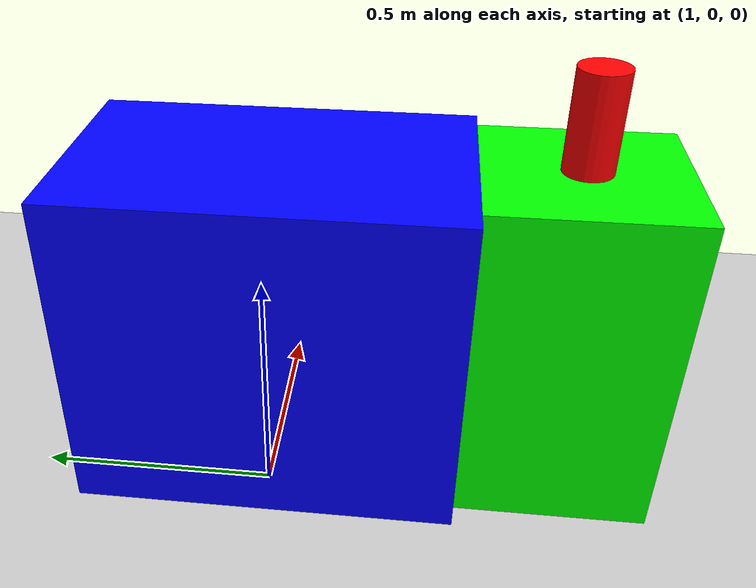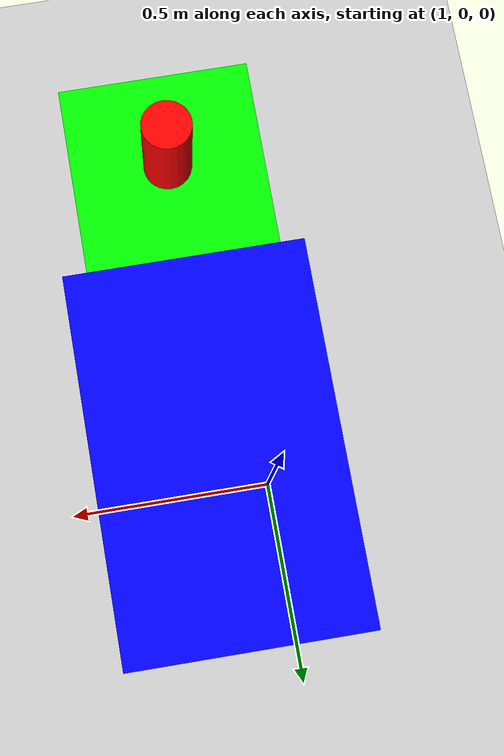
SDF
<sdf version="1.6">
  <world name="obstacle_world">
    <physics name="1ms" type="ode">
      <max_step_size>0.001</max_step_size>
      <real_time_update_rate>200</real_time_update_rate>
    </physics>
    <plugin filename="libignition-gazebo-physics-system.so" name="ignition::gazebo::systems::Physics"/>
    <plugin filename="libignition-gazebo-user-commands-system.so" name="ignition::gazebo::systems::UserCommands"/>
    <plugin filename="libignition-gazebo-scene-broadcaster-system.so" name="ignition::gazebo::systems::SceneBroadcaster"/>

    <light type="directional" name="sun">
      <cast_shadows>true</cast_shadows>
      <pose>0 0 10 0 0 0</pose>
      <diffuse>0.8 0.8 0.8 1</diffuse>
      <specular>0.2 0.2 0.2 1</specular>
      <direction>-0.5 0.1 -0.9</direction>
    </light>

    <model name="ground_plane">
      <static>true</static>
      <link name="link">
        <collision name="collision"><geometry><plane><normal>0 0 1</normal><size>100 100</size></plane></geometry></collision>
        <visual name="visual"><geometry><plane><normal>0 0 1</normal><size>100 100</size></plane></geometry>
          <material><ambient>0.8 0.8 0.8 1</ambient><diffuse>0.8 0.8 0.8 1</diffuse></material>
        </visual>
      </link>
    </model>

    <model name="table">
      <static>true</static>
      <pose>1.15 0 0.35 0 0 0</pose>
      <link name="link">
        <visual name="visual">
          <geometry><box><size>0.5 0.8 0.7</size></box></geometry>
          <material><ambient>0 0 1 1</ambient><diffuse>0 0 1 1</diffuse></material>
        </visual>
        <collision name="collision"><geometry><box><size>0.5 0.8 0.7</size></box></geometry></collision>
      </link>
    </model>

    <model name="green_box">
      <static>true</static>
      <pose>1.15 -0.6 0.35 0 0 0</pose>
      <link name="link">
        <visual name="visual">
          <geometry><box><size>0.4 0.4 0.7</size></box></geometry>
          <material><ambient>0 1 0 1</ambient><diffuse>0 1 0 1</diffuse></material>
        </visual>
        <collision name="collision"><geometry><box><size>0.4 0.4 0.7</size></box></geometry></collision>
      </link>
    </model>

    <model name="cylinder_item">
      <static>true</static>
      <pose>1.15 -0.6 0.8 0 0 0</pose>
      <link name="link">
        <visual name="visual">
          <geometry><cylinder><radius>0.05</radius><length>0.2</length></cylinder></geometry>
          <material><ambient>1 0 0 1</ambient><diffuse>1 0 0 1</diffuse></material>
        </visual>
        <collision name="collision"><geometry><cylinder><radius>0.05</radius><length>0.2</length></cylinder></geometry></collision>
      </link>
    </model>
  </world>
</sdf>
